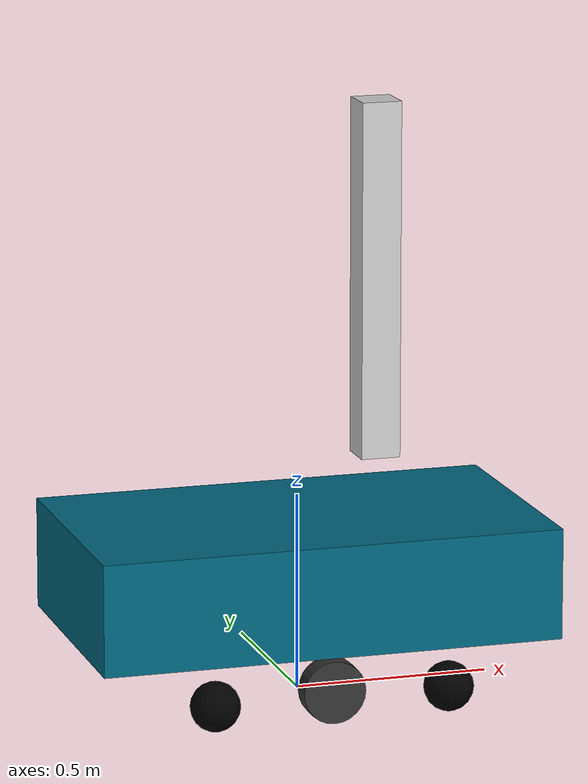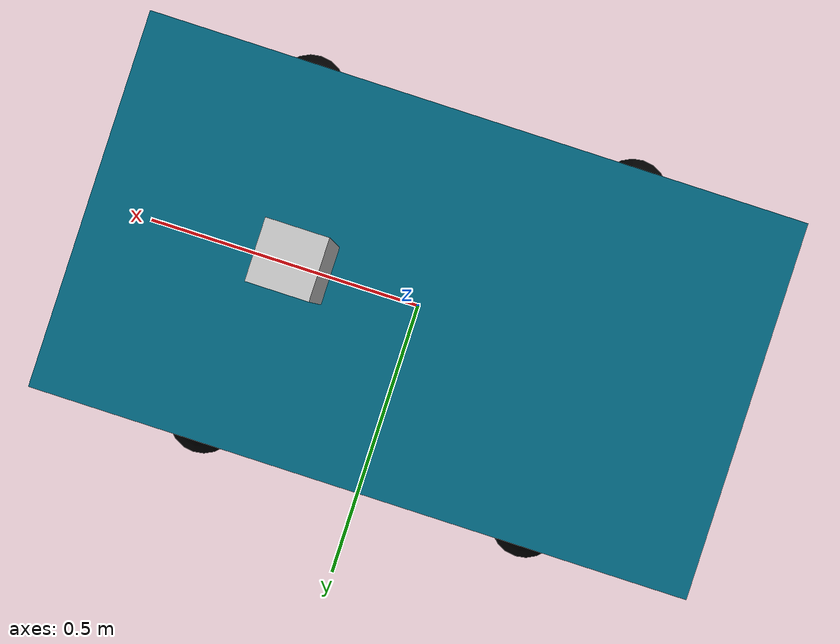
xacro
<?xml version="1.0"?>
<robot xmlns:xacro="http://www.ros.org/wiki/xacro">

    <xacro:include filename="inertial_macros.xacro"/>

    <!--    value size      -->
    <xacro:property name="base_mass" value="84.837"/>
    <xacro:property name="base_width" value="0.670"/>
    <xacro:property name="base_length" value="1.172"/>
    <xacro:property name="base_height" value="0.563"/>

    <xacro:property name="monitor_mass" value="16.008"/>
    <xacro:property name="monitor_width" value="0.1"/>
    <xacro:property name="monitor_length" value="0.1"/>
    <xacro:property name="monitor_height" value="0.9"/>
    <xacro:property name="monitor_zoff" value="0.730"/>
    <xacro:property name="monitor_xoff" value="0.204"/>

    <xacro:property name="wheel_mass" value="3.610"/>
    <xacro:property name="wheel_radius" value="0.079"/>
    <xacro:property name="wheel_width" value="0.055"/>
    <xacro:property name="wheel_yoff" value="0.300"/> <xacro:property name="wheel_zoff" value="0.231"/>

    <xacro:property name="caster_mass" value="1.355"/>
    <xacro:property name="caster_radius" value="0.0625"/>
    <xacro:property name="caster_width" value="0.0520"/>
    <xacro:property name="caster_xoff" value="0.300"/>
    <xacro:property name="caster_yoff" value="-0.0289"/>
    <xacro:property name="caster_zoff" value="0.245"/>

    <!-- colour -->
    <material name="blue"><color rgba="0 0.4 0.5 1"/></material>
    <material name="grey"><color rgba="0.8 0.8 0.8 1"/></material>
    <material name="dark"><color rgba="0.2 0.2 0.2 1"/></material>
    <material name="black"><color rgba="0 0 0 1"/></material>

    <!-- BASE FOOTPRINT -->
    <link name="base_footprint">
    </link>

    <joint name="base_footprint_joint" type="fixed">
        <parent link="base_footprint"/>
        <child link="base_link"/>
        <origin xyz="0 0 ${wheel_radius+wheel_zoff}" rpy="0 0 0"/>
    </joint>

    <!-- BASE LINK -->
    <link name="base_link">
        <visual>
            <origin xyz="0 0 0" rpy="0 0 0"/>
            <geometry>
                <box size="${base_length} ${base_width} ${base_height/2}"/>
            </geometry>
            <material name="blue"/>
        </visual>
        <collision>
            <origin xyz="0 0 0" rpy="0 0 0"/>
            <geometry>
                <box size="${base_length} ${base_width} ${base_height/2}"/>
            </geometry>
        </collision>
        <xacro:box_inertia m="${base_mass}" w="${base_width}" l="${base_length}" h="${base_height}"/>
    </link>

    <gazebo reference="base_link">
        <material>Gazebo/Blue</material>
    </gazebo>

    <!-- MONITOR JOINT -->
    <joint name="monitor_joint" type="fixed">
        <parent link="base_link"/>
        <child link="monitor_link"/>
        <origin xyz="${monitor_xoff} 0 ${monitor_zoff}" rpy="0 0 0"/>
    </joint>

    <link name="monitor_link">
        <visual>
            <geometry>
                <box size="${monitor_length} ${monitor_width} ${monitor_height}"/>
            </geometry>
            <material name="grey"/>
        </visual>
        <collision>
            <geometry>
                <box size="${monitor_length} ${monitor_width} ${monitor_height}"/>
            </geometry>
        </collision>
        <xacro:box_inertia m="${monitor_mass}" w="${monitor_width}" l="${monitor_length}" h="${monitor_height}"/>
    </link>

    <gazebo reference="monitor_link">
        <material>Gazebo/Grey</material>
    </gazebo>

    <!-- LEFT WHEEL -->
    <joint name="left_wheel_joint" type="continuous">

        <parent link="base_link"/>
        <child link="left_wheel"/>
        <origin xyz="0 ${wheel_yoff} ${-wheel_zoff}" rpy="-${pi/2} 0 0" />
        <axis xyz="0 0 1"/>
    </joint>

    <link name="left_wheel">
        <visual>
            <geometry>
                <cylinder radius="${wheel_radius}" length="${wheel_width}"/>
            </geometry>
            <material name="dark"/>
        </visual>
        <collision>
            <geometry>
                <cylinder radius="${wheel_radius}" length="${wheel_width}"/>
            </geometry>
        </collision>
        <xacro:cylinder_inertia m="${wheel_mass}" r="${wheel_radius}" h="${wheel_width}"/>
    </link>

    <gazebo reference="left_wheel">
        <material>Gazebo/DarkGrey</material>
    </gazebo>

    <!-- RIGHT WHEEL -->
    <joint name="right_wheel_joint" type="continuous">
        <parent link="base_link"/>
        <child link="right_wheel"/>
        <origin xyz="0 -${wheel_yoff} ${-wheel_zoff}" rpy="${pi/2} 0 0" />
        <axis xyz="0 0 -1"/>
    </joint>

    <link name="right_wheel">
        <visual>
            <geometry>
                <cylinder radius="${wheel_radius}" length="${wheel_width}"/>
            </geometry>
            <material name="dark"/>
        </visual>
        <collision>
            <geometry>
                <cylinder radius="${wheel_radius}" length="${wheel_width}"/>
            </geometry>
        </collision>
        <xacro:cylinder_inertia m="${wheel_mass}" r="${wheel_radius}" h="${wheel_width}"/>
    </link>

    <gazebo reference="right_wheel">
        <material>Gazebo/DarkGrey</material>
    </gazebo>

    <!-- CASTER WHEEL -->
    <xacro:macro name="caster_wheel" params="prefix x_reflect y_reflect">
        <joint name="${prefix}_joint" type="fixed">
            <parent link="base_link"/>
            <child link="${prefix}_link"/>
            <origin xyz="${x_reflect*caster_xoff} ${y_reflect*(base_width/2+caster_yoff)} ${-caster_zoff}" rpy="0 0 0"/>
        </joint>

        <link name="${prefix}_link">
            <visual>
                <geometry><sphere radius="${caster_radius}"/></geometry>
                <material name="black"/>
            </visual>
            <collision>
                <geometry><sphere radius="${caster_radius}"/></geometry>
            </collision>
            <xacro:cylinder_inertia m="${caster_mass}" r="${caster_radius}" h="${caster_width}"/>
        </link>

        <gazebo reference="${prefix}_link">
            <material>Gazebo/Black</material>
            <mu1 value="0.01"/>
            <mu2 value="0.01"/>
        </gazebo>
    </xacro:macro>

    <xacro:caster_wheel prefix="casterwhl_fl" x_reflect="-1" y_reflect="1" />
    <xacro:caster_wheel prefix="casterwhl_fr" x_reflect="-1" y_reflect="-1" />
    <xacro:caster_wheel prefix="casterwhl_rl" x_reflect="1" y_reflect="1" />
    <xacro:caster_wheel prefix="casterwhl_rr" x_reflect="1" y_reflect="-1" />

</robot>

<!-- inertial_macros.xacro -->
<robot xmlns:xacro="http://www.ros.org/wiki/xacro">

    <xacro:macro name="box_inertia" params="m w l h">
        <inertial>
            <origin xyz="0 0 0" rpy="${pi/2} 0 ${pi/2}"/>
            <mass value="${m}"/>
            <inertia ixx="${(m/12) * (l*l + h*h)}" ixy="0.0" ixz="0.0"
                     iyy="${(m/12) * (w*w + h*h)}" iyz="0.0"
                     izz="${(m/12) * (w*w + l*l)}"/>
        </inertial>
    </xacro:macro>

    <xacro:macro name="cylinder_inertia" params="m r h">
        <inertial>
            <origin xyz="0 0 0" rpy="${pi/2} 0 0"/>
            <mass value="${m}"/>
            <inertia ixx="${(m/12) * (3*r*r + h*h)}" ixy="0.0" ixz="0.0"
                     iyy="${(m/12) * (3*r*r + h*h)}" iyz="0.0"
                     izz="${(m/2) * (r*r)}"/>
        </inertial>
    </xacro:macro>

    <xacro:macro name="sphere_inertia" params="m r">
        <inertial>
            <origin xyz="0 0 0" rpy="0 0 0"/>
            <mass value="${m}"/>
            <inertia ixx="${(2/5) * m * (r*r)}" ixy="0.0" ixz="0.0"
                     iyy="${(2/5) * m * (r*r)}" iyz="0.0"
                     izz="${(2/5) * m * (r*r)}"/>
        </inertial>
    </xacro:macro>

</robot>
